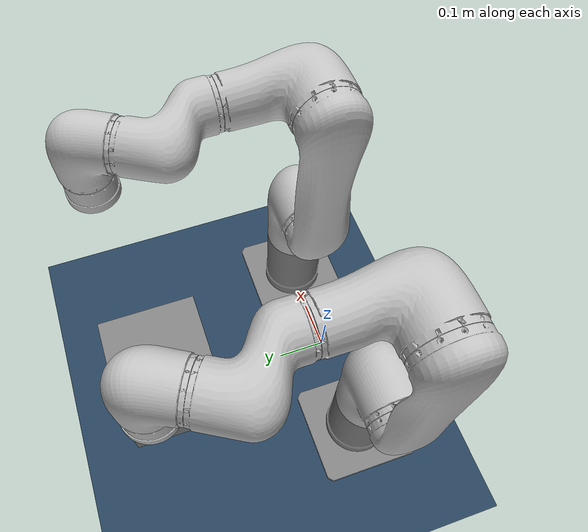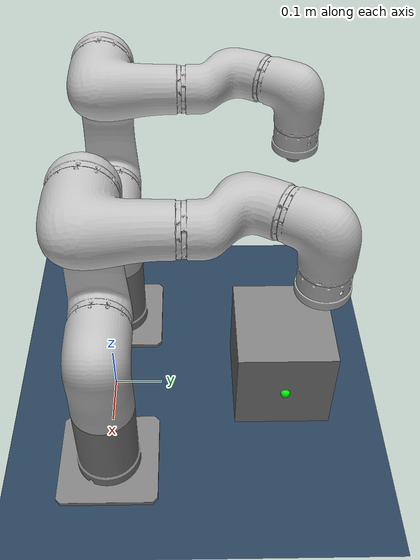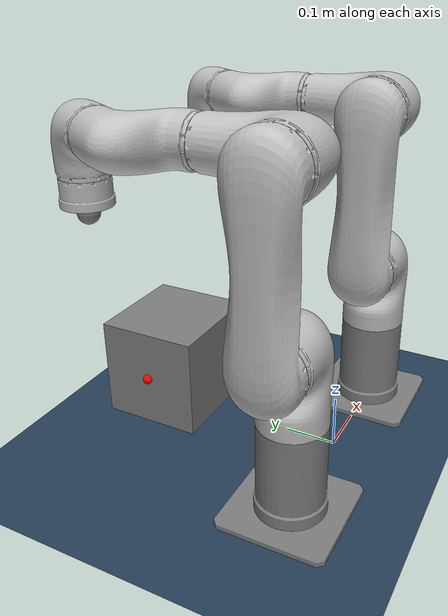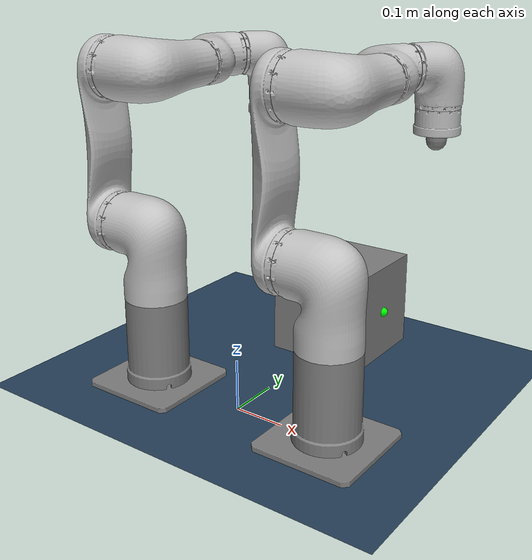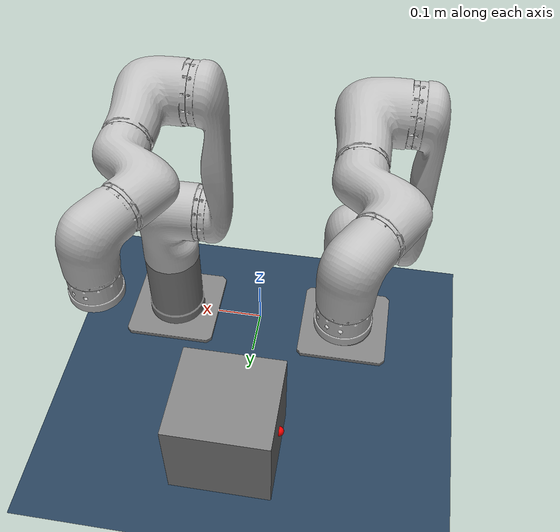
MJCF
<mujoco model="dual_heal">
   <option gravity="0 0 -9.81" />
   <compiler angle="radian"
   inertiafromgeom="false"
   discardvisual="false"
   meshdir="meshes_new/" />

   <statistic center="0.3 0 0.4" extent="1.5"/>

   <asset>
      <texture type="skybox" builtin="gradient" rgb1="0.3 0.5 0.7" rgb2="0 0 0" width="512" height="3072"/>
      <texture type="2d" name="groundplane" builtin="checker" mark="edge" rgb1="0.2 0.3 0.4" rgb2="0.1 0.2 0.3"
         markrgb="0.8 0.8 0.8" width="300" height="300"/>
      <material name="groundplane" texture="groundplane" texuniform="true" texrepeat="5 5" reflectance="0.2"/>
      <mesh name="base_link" file="base_link.STL" />
      <mesh name="link1" file="link_1.STL" />
      <mesh name="link2" file="link_2.STL" />
      <mesh name="link3" file="link_3.STL" />
      <mesh name="link4" file="link_4.STL" />
      <mesh name="link5" file="link_5.STL" />
      <mesh name="end_effector" file="end_effector.STL" />
      <material name="red_material" rgba="1 0 0 1" />
   </asset>

   <worldbody>
      <light pos="0 0 1.5" dir="0 0 -1" directional="true"/>
      <geom name="floor" size="0 0 0.05" type="plane" material="groundplane"/>
      <camera name="scene_3d_view" pos="1 1 1" zaxis="-0 -1 -1"/>

      <!-- Left Arm -->
      <body name="left_base_link" pos="0.2 0 0" euler="0 0 1.5708">
         <geom type="mesh" mesh="base_link" />

         <body name="left_link_1" pos="0 0 0.171">
            <inertial pos="-12.54E-03 -0.04E-03 111.27E-03"
                      quat="0.704455 -0.0304055 0.0162858 0.70891"
                      mass="7.92" diaginertia="0.00490984 0.00426023 0.00389513" />
            <joint name="left_joint_1" pos="0 0 0" axis="0 0 1" range="-3.14159 3.14159" frictionloss="0.1" actuatorfrcrange="-10000 10000" />
            <geom type="mesh" rgba="0.75294 0.75294 0.75294 1" mesh="link1" />

            <body name="left_link_2" pos="0 0.0875 0.1498" quat="0.707105 0.707108 0 0">
               <inertial pos="-0.00017021 0.1561 -0.016973"
                         quat="0.499892 0.50026 -0.499813 0.500035"
                         mass="1.24" diaginertia="0.0097684 0.0086581 0.0014536" />
               <joint name="left_joint_2" pos="0 0 0" axis="0 0 -1" range="-3.14159 3.14159" frictionloss="0.1" actuatorfrcrange="-10000 10000" />
               <geom type="mesh" rgba="0.75294 0.75294 0.75294 1" mesh="link2" />

               <body name="left_link_3" pos="0 0.3 0" euler="0 0 -1.57">
                  <inertial pos="-7.5516e-07 0 0.073251"
                            quat="0.495149 0.509997 -0.506629 0.487912"
                            mass="5.57" diaginertia="0.0048786 0.00425304 0.00369796" />
                  <joint name="left_joint_3" pos="0 0 0" axis="0 0 1" range="-3.14159 3.14159" frictionloss="0.1" actuatorfrcrange="-10000 10000" />
                  <geom type="mesh" rgba="0.75294 0.75294 0.75294 1" mesh="link3" />

                  <body name="left_link_4" pos="0 0.1593 0.0875" euler="-1.57 0 0">
                     <inertial pos="1.3303e-05 0.06 0.10412"
                               quat="0.313668 0.63349 -0.634256 0.313086"
                               mass="1.9" diaginertia="0.00162547 0.0014257 0.00104183" />
                     <joint name="left_joint_4" pos="0 0 0" axis="0 0 1" range="-3.14159 3.14159" frictionloss="0.1" actuatorfrcrange="-10000 10000" />
                     <geom type="mesh" rgba="0.75294 0.75294 0.75294 1" mesh="link4" />

                     <body name="left_link_5" pos="0 0.03185 0.16105" euler="0.50951 0 1.57">
                        <inertial pos="-5.6194e-05 -0.046 0.059696"
                                  quat="0.457117 0.537094 0.438555 0.556994"
                                  mass="1.78" diaginertia="0.000913478 0.000827593 0.000774169" />
                        <joint name="left_joint_5" pos="0 0 0" axis="0 0 1" range="-3.14159 3.14159" frictionloss="0.1" actuatorfrcrange="-10000 10000" />
                        <geom type="mesh" rgba="0.75294 0.75294 0.75294 1" mesh="link5" />

                        <body name="left_end_effector" pos="0 -0.1227 0.0654" quat="0.707105 0.707108 0 0">
                           <inertial pos="7.0245e-06 -0.00022138 -0.016847"
                                     quat="-0.0128774 0.707029 0.00995758 0.706998"
                                     mass="0.001" diaginertia="0.000326122 0.000191249 0.000189678" />
                           <joint name="left_joint_6" pos="0 0 0" axis="0 0 -1" range="-3.14159 3.14159" frictionloss="0.1" actuatorfrcrange="-10000 10000" />
                           <geom type="mesh" rgba="0.75294 0.75294 0.75294 1" mesh="end_effector" />
                           <geom name="left_capsule" type="capsule" size="0.02 0.01" pos="0 0 0.010" rgba="0.5 0.5 0.5 1" contype="1" conaffinity="1" condim="6" friction="1.0 0.5 0.5" solref="0.02 1" solimp="0.9 0.95 0.001"/>
                        </body>
                     </body>
                  </body>
               </body>
            </body>
         </body>
      </body>

      <!-- Right Arm -->
      <body name="right_base_link" pos="-0.2 0 0" euler="0 0 1.5708">
         <geom type="mesh" mesh="base_link" />

         <body name="right_link_1" pos="0 0 0.171">
            <inertial pos="-12.54E-03 -0.04E-03 111.27E-03"
                      quat="0.704455 -0.0304055 0.0162858 0.70891"
                      mass="7.92" diaginertia="0.00490984 0.00426023 0.00389513" />
            <joint name="right_joint_1" pos="0 0 0" axis="0 0 1" range="-3.14159 3.14159" frictionloss="0.1" actuatorfrcrange="-10000 10000" />
            <geom type="mesh" rgba="0.75294 0.75294 0.75294 1" mesh="link1" />

            <body name="right_link_2" pos="0 0.0875 0.1498" quat="0.707105 0.707108 0 0">
               <inertial pos="-0.00017021 0.1561 -0.016973"
                         quat="0.499892 0.50026 -0.499813 0.500035"
                         mass="1.24" diaginertia="0.0097684 0.0086581 0.0014536" />
               <joint name="right_joint_2" pos="0 0 0" axis="0 0 -1" range="-3.14159 3.14159" frictionloss="0.1" actuatorfrcrange="-10000 10000" />
               <geom type="mesh" rgba="0.75294 0.75294 0.75294 1" mesh="link2" />

               <body name="right_link_3" pos="0 0.3 0" euler="0 0 -1.57">
                  <inertial pos="-7.5516e-07 0 0.073251"
                            quat="0.495149 0.509997 -0.506629 0.487912"
                            mass="5.57" diaginertia="0.0048786 0.00425304 0.00369796" />
                  <joint name="right_joint_3" pos="0 0 0" axis="0 0 1" range="-3.14159 3.14159" frictionloss="0.1" actuatorfrcrange="-10000 10000" />
                  <geom type="mesh" rgba="0.75294 0.75294 0.75294 1" mesh="link3" />

                  <body name="right_link_4" pos="0 0.1593 0.0875" euler="-1.57 0 0">
                     <inertial pos="1.3303e-05 0.06 0.10412"
                               quat="0.313668 0.63349 -0.634256 0.313086"
                               mass="1.9" diaginertia="0.00162547 0.0014257 0.00104183" />
                     <joint name="right_joint_4" pos="0 0 0" axis="0 0 1" range="-3.14159 3.14159" frictionloss="0.1" actuatorfrcrange="-10000 10000" />
                     <geom type="mesh" rgba="0.75294 0.75294 0.75294 1" mesh="link4" />

                     <body name="right_link_5" pos="0 0.03185 0.16105" euler="0.50951 0 1.57">
                        <inertial pos="-5.6194e-05 -0.046 0.059696"
                                  quat="0.457117 0.537094 0.438555 0.556994"
                                  mass="1.78" diaginertia="0.000913478 0.000827593 0.000774169" />
                        <joint name="right_joint_5" pos="0 0 0" axis="0 0 1" range="-3.14159 3.14159" frictionloss="0.1" actuatorfrcrange="-10000 10000" />
                        <geom type="mesh" rgba="0.75294 0.75294 0.75294 1" mesh="link5" />

                        <body name="right_end_effector" pos="0 -0.1227 0.0654" quat="0.707105 0.707108 0 0">
                           <inertial pos="7.0245e-06 -0.00022138 -0.016847"
                                     quat="-0.0128774 0.707029 0.00995758 0.706998"
                                     mass="0.001" diaginertia="0.000326122 0.000191249 0.000189678" />
                           <joint name="right_joint_6" pos="0 0 0" axis="0 0 -1" range="-3.14159 3.14159" frictionloss="0.1" actuatorfrcrange="-10000 10000" />
                           <geom type="mesh" rgba="0.75294 0.75294 0.75294 1" mesh="end_effector" />
                           <geom name="right_capsule" type="capsule" size="0.02 0.01" pos="0 0 0.010" rgba="0.5 0.5 0.5 1" contype="1" conaffinity="1"  condim="6" friction="1.0 0.5 0.5" solref="0.02 1" solimp="0.9 0.95 0.001"/>
                        </body>
                     </body>
                  </body>
               </body>
            </body>
         </body>
      </body>

   <!-- Large box for robots to pick up -->
      <body name="box" pos="0.005 0.36 0.1">
         <joint name="box_joint" type="free" />
         <geom type="box" size="0.105 0.1 0.1" rgba="0.5 0.5 0.5 1" contype="1" conaffinity="1" condim="6" friction="1 0.5 0.5" solref="0.02 1" solimp="0.9 0.95 0.001"/>
         <inertial pos="0 0 0" mass="0.1" fullinertia="0.0001 0.0001 0.0001 0 0 0" />

         <!-- Left Face Site -->
         <site name="right_face_site" pos="-0.105 0 0" size="0.01" type="sphere" rgba="1 0 0 1" />

         <!-- Right Face Site -->
         <site name="left_face_site" pos="0.105 0 0" size="0.01" type="sphere" euler="0 0 3.14159" rgba="0 1 0 1" />
      </body>

   </worldbody>

   <!-- Actuators for Left Arm -->
   <actuator>
      <motor name="left_turret" joint="left_joint_1" />
      <motor name="left_shoulder" joint="left_joint_2" />
      <motor name="left_elbow" joint="left_joint_3" />
      <motor name="left_wrist_1" joint="left_joint_4" />
      <motor name="left_wrist_2" joint="left_joint_5" />
      <motor name="left_wrist_3" joint="left_joint_6" />

      <motor name="right_turret" joint="right_joint_1" />
      <motor name="right_shoulder" joint="right_joint_2" />
      <motor name="right_elbow" joint="right_joint_3" />
      <motor name="right_wrist_1" joint="right_joint_4" />
      <motor name="right_wrist_2" joint="right_joint_5" />
      <motor name="right_wrist_3" joint="right_joint_6" />
   </actuator>
</mujoco>
